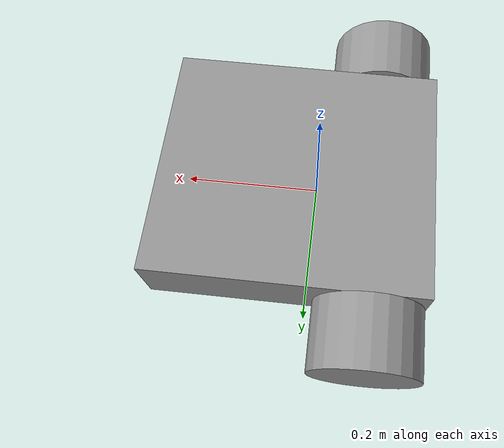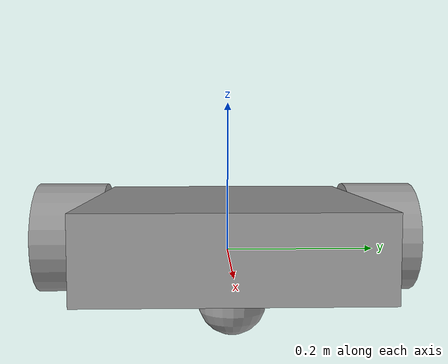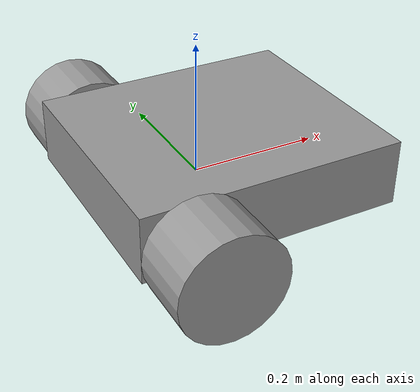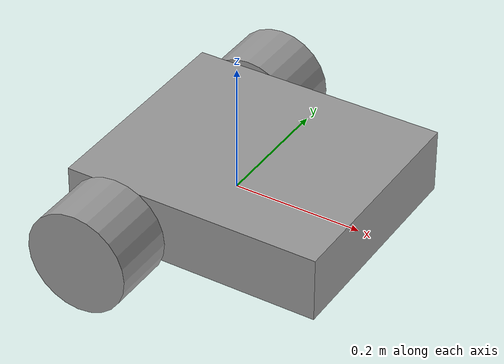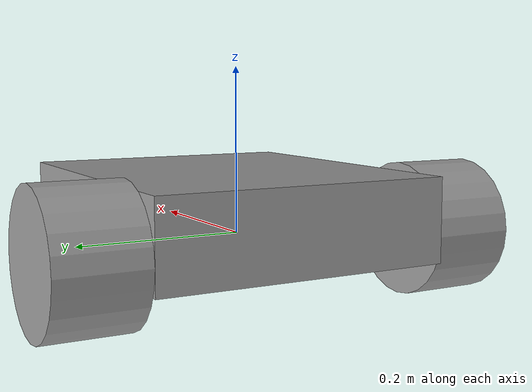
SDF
<?xml version='1.0'?>
<sdf version='1.6'>
  <model name='CasterWheelRobot'>
    <link name='link_2'>
      <pose frame=''>0.03 0 0.025 0 -0 0</pose>
      <inertial>
        <mass>0.0155432</mass>
        <inertia>
          <ixx>0.0001924</ixx>
          <ixy>0</ixy>
          <ixz>0</ixz>
          <iyy>0.0002189</iyy>
          <iyz>0</iyz>
          <izz>0.00038243</izz>
        </inertia>
        <pose frame=''>0 0 0 0 -0 0</pose>
      </inertial>
      <gravity>1</gravity>
      <self_collide>0</self_collide>
      <kinematic>0</kinematic>
      <visual name='visual'>
        <pose frame=''>0 0 0 0 -0 0</pose>
        <geometry>
          <box>
            <size>0.4 0.35 0.1</size>
          </box>
        </geometry>
        <material>
          <lighting>1</lighting>
          <script>
            <uri>file://media/materials/scripts/gazebo.material</uri>
            <name>Gazebo/Grey</name>
          </script>
          <shader type='pixel'>
            <normal_map>__default__</normal_map>
          </shader>
          <ambient>0.3 0.3 0.3 1</ambient>
          <diffuse>0.7 0.7 0.7 1</diffuse>
          <specular>0.01 0.01 0.01 1</specular>
          <emissive>0 0 0 1</emissive>
        </material>
        <transparency>0</transparency>
        <cast_shadows>1</cast_shadows>
      </visual>
      <collision name='collision'>
        <laser_retro>0</laser_retro>
        <max_contacts>10</max_contacts>
        <pose frame=''>0 0 0 0 -0 0</pose>
        <geometry>
          <box>
            <size>0.4 0.35 0.1</size>
          </box>
        </geometry>
        <surface>
          <friction>
            <ode>
              <mu>1</mu>
              <mu2>1</mu2>
              <fdir1>0 0 0</fdir1>
              <slip1>0</slip1>
              <slip2>0</slip2>
            </ode>
            <torsional>
              <coefficient>1</coefficient>
              <patch_radius>0</patch_radius>
              <surface_radius>0</surface_radius>
              <use_patch_radius>1</use_patch_radius>
              <ode>
                <slip>0</slip>
              </ode>
            </torsional>
          </friction>
          <bounce>
            <restitution_coefficient>0</restitution_coefficient>
            <threshold>1e+06</threshold>
          </bounce>
          <contact>
            <collide_without_contact>0</collide_without_contact>
            <collide_without_contact_bitmask>1</collide_without_contact_bitmask>
            <collide_bitmask>1</collide_bitmask>
            <ode>
              <soft_cfm>0</soft_cfm>
              <soft_erp>0.2</soft_erp>
              <kp>1e+13</kp>
              <kd>1</kd>
              <max_vel>0.01</max_vel>
              <min_depth>0</min_depth>
            </ode>
            <bullet>
              <split_impulse>1</split_impulse>
              <split_impulse_penetration_threshold>-0.01</split_impulse_penetration_threshold>
              <soft_cfm>0</soft_cfm>
              <soft_erp>0.2</soft_erp>
              <kp>1e+13</kp>
              <kd>1</kd>
            </bullet>
          </contact>
        </surface>
      </collision>
    </link>
    <link name='link_3'>
      <pose frame=''>-0.09 -0.225013 0.005 1.5707 -0 0</pose>
      <inertial>
        <mass>1</mass>
        <inertia>
          <ixx>0.145833</ixx>
          <ixy>0</ixy>
          <ixz>0</ixz>
          <iyy>0.145833</iyy>
          <iyz>0</iyz>
          <izz>0.125</izz>
        </inertia>
        <pose frame=''>0 0 0 0 -0 0</pose>
      </inertial>
      <gravity>1</gravity>
      <self_collide>0</self_collide>
      <kinematic>0</kinematic>
      <visual name='visual'>
        <pose frame=''>0 0 0 0 -0 0</pose>
        <geometry>
          <cylinder>
            <radius>0.08</radius>
            <length>0.1</length>
          </cylinder>
        </geometry>
        <material>
          <lighting>1</lighting>
          <script>
            <uri>file://media/materials/scripts/gazebo.material</uri>
            <name>Gazebo/Grey</name>
          </script>
          <shader type='pixel'>
            <normal_map>__default__</normal_map>
          </shader>
          <ambient>0.3 0.3 0.3 1</ambient>
          <diffuse>0.7 0.7 0.7 1</diffuse>
          <specular>0.01 0.01 0.01 1</specular>
          <emissive>0 0 0 1</emissive>
        </material>
        <transparency>0</transparency>
        <cast_shadows>1</cast_shadows>
      </visual>
      <collision name='collision'>
        <laser_retro>0</laser_retro>
        <max_contacts>10</max_contacts>
        <pose frame=''>0 0 0 0 -0 0</pose>
        <geometry>
          <cylinder>
            <radius>0.08</radius>
            <length>0.1</length>
          </cylinder>
        </geometry>
        <surface>
          <friction>
            <ode>
              <mu>1</mu>
              <mu2>1</mu2>
              <fdir1>0 0 0</fdir1>
              <slip1>0</slip1>
              <slip2>0</slip2>
            </ode>
            <torsional>
              <coefficient>1</coefficient>
              <patch_radius>0</patch_radius>
              <surface_radius>0</surface_radius>
              <use_patch_radius>1</use_patch_radius>
              <ode>
                <slip>0</slip>
              </ode>
            </torsional>
          </friction>
          <bounce>
            <restitution_coefficient>0</restitution_coefficient>
            <threshold>1e+06</threshold>
          </bounce>
          <contact>
            <collide_without_contact>0</collide_without_contact>
            <collide_without_contact_bitmask>1</collide_without_contact_bitmask>
            <collide_bitmask>1</collide_bitmask>
            <ode>
              <soft_cfm>0</soft_cfm>
              <soft_erp>0.2</soft_erp>
              <kp>1e+13</kp>
              <kd>1</kd>
              <max_vel>0.01</max_vel>
              <min_depth>0</min_depth>
            </ode>
            <bullet>
              <split_impulse>1</split_impulse>
              <split_impulse_penetration_threshold>-0.01</split_impulse_penetration_threshold>
              <soft_cfm>0</soft_cfm>
              <soft_erp>0.2</soft_erp>
              <kp>1e+13</kp>
              <kd>1</kd>
            </bullet>
          </contact>
        </surface>
      </collision>
    </link>
    <link name='link_3_clone'>
      <pose frame=''>-0.09 0.225008 0.005 -1.5707 0 0</pose>
      <inertial>
        <mass>1</mass>
        <inertia>
          <ixx>0.145833</ixx>
          <ixy>0</ixy>
          <ixz>0</ixz>
          <iyy>0.145833</iyy>
          <iyz>0</iyz>
          <izz>0.125</izz>
        </inertia>
        <pose frame=''>0 0 0 0 -0 0</pose>
      </inertial>
      <self_collide>0</self_collide>
      <kinematic>0</kinematic>
      <gravity>1</gravity>
      <visual name='visual'>
        <pose frame=''>0 0 0 0 -0 0</pose>
        <geometry>
          <cylinder>
            <radius>0.08</radius>
            <length>0.1</length>
          </cylinder>
        </geometry>
        <material>
          <lighting>1</lighting>
          <script>
            <uri>file://media/materials/scripts/gazebo.material</uri>
            <name>Gazebo/Grey</name>
          </script>
          <shader type='pixel'>
            <normal_map>__default__</normal_map>
          </shader>
          <ambient>0.3 0.3 0.3 1</ambient>
          <diffuse>0.7 0.7 0.7 1</diffuse>
          <specular>0.01 0.01 0.01 1</specular>
          <emissive>0 0 0 1</emissive>
        </material>
        <transparency>0</transparency>
        <cast_shadows>1</cast_shadows>
      </visual>
      <collision name='collision'>
        <laser_retro>0</laser_retro>
        <max_contacts>10</max_contacts>
        <pose frame=''>0 0 0 0 -0 0</pose>
        <geometry>
          <cylinder>
            <radius>0.08</radius>
            <length>0.1</length>
          </cylinder>
        </geometry>
        <surface>
          <friction>
            <ode>
              <mu>1</mu>
              <mu2>1</mu2>
              <fdir1>0 0 0</fdir1>
              <slip1>0</slip1>
              <slip2>0</slip2>
            </ode>
            <torsional>
              <coefficient>1</coefficient>
              <patch_radius>0</patch_radius>
              <surface_radius>0</surface_radius>
              <use_patch_radius>1</use_patch_radius>
              <ode>
                <slip>0</slip>
              </ode>
            </torsional>
          </friction>
          <bounce>
            <restitution_coefficient>0</restitution_coefficient>
            <threshold>1e+06</threshold>
          </bounce>
          <contact>
            <collide_without_contact>0</collide_without_contact>
            <collide_without_contact_bitmask>1</collide_without_contact_bitmask>
            <collide_bitmask>1</collide_bitmask>
            <ode>
              <soft_cfm>0</soft_cfm>
              <soft_erp>0.2</soft_erp>
              <kp>1e+13</kp>
              <kd>1</kd>
              <max_vel>0.01</max_vel>
              <min_depth>0</min_depth>
            </ode>
            <bullet>
              <split_impulse>1</split_impulse>
              <split_impulse_penetration_threshold>-0.01</split_impulse_penetration_threshold>
              <soft_cfm>0</soft_cfm>
              <soft_erp>0.2</soft_erp>
              <kp>1e+13</kp>
              <kd>1</kd>
            </bullet>
          </contact>
        </surface>
      </collision>
    </link>
    <link name='link_4'>
      <pose frame=''>0.15 0 -0.035 0 -0 0</pose>
      <inertial>
        <mass>0.00336129</mass>
        <inertia>
          <ixx>7.54e-06</ixx>
          <ixy>0</ixy>
          <ixz>0</ixz>
          <iyy>7.54e-06</iyy>
          <iyz>0</iyz>
          <izz>7.54e-06</izz>
        </inertia>
        <pose frame=''>0 0 0 0 -0 0</pose>
      </inertial>
      <gravity>1</gravity>
      <self_collide>0</self_collide>
      <kinematic>0</kinematic>
      <visual name='visual'>
        <pose frame=''>0 0 0 0 -0 0</pose>
        <geometry>
          <sphere>
            <radius>0.04</radius>
          </sphere>
        </geometry>
        <material>
          <lighting>1</lighting>
          <script>
            <uri>file://media/materials/scripts/gazebo.material</uri>
            <name>Gazebo/Grey</name>
          </script>
          <shader type='pixel'>
            <normal_map>__default__</normal_map>
          </shader>
          <ambient>0.3 0.3 0.3 1</ambient>
          <diffuse>0.7 0.7 0.7 1</diffuse>
          <specular>0.01 0.01 0.01 1</specular>
          <emissive>0 0 0 1</emissive>
        </material>
        <transparency>0</transparency>
        <cast_shadows>1</cast_shadows>
      </visual>
      <collision name='collision'>
        <laser_retro>0</laser_retro>
        <max_contacts>10</max_contacts>
        <pose frame=''>0 0 0 0 -0 0</pose>
        <geometry>
          <sphere>
            <radius>0.04</radius>
          </sphere>
        </geometry>
        <surface>
          <friction>
            <ode>
              <mu>1</mu>
              <mu2>1</mu2>
              <fdir1>0 0 0</fdir1>
              <slip1>0</slip1>
              <slip2>0</slip2>
            </ode>
            <torsional>
              <coefficient>1</coefficient>
              <patch_radius>0</patch_radius>
              <surface_radius>0</surface_radius>
              <use_patch_radius>1</use_patch_radius>
              <ode>
                <slip>0</slip>
              </ode>
            </torsional>
          </friction>
          <bounce>
            <restitution_coefficient>0</restitution_coefficient>
            <threshold>1e+06</threshold>
          </bounce>
          <contact>
            <collide_without_contact>0</collide_without_contact>
            <collide_without_contact_bitmask>1</collide_without_contact_bitmask>
            <collide_bitmask>1</collide_bitmask>
            <ode>
              <soft_cfm>0</soft_cfm>
              <soft_erp>0.2</soft_erp>
              <kp>1e+13</kp>
              <kd>1</kd>
              <max_vel>0.01</max_vel>
              <min_depth>0</min_depth>
            </ode>
            <bullet>
              <split_impulse>1</split_impulse>
              <split_impulse_penetration_threshold>-0.01</split_impulse_penetration_threshold>
              <soft_cfm>0</soft_cfm>
              <soft_erp>0.2</soft_erp>
              <kp>1e+13</kp>
              <kd>1</kd>
            </bullet>
          </contact>
        </surface>
      </collision>
    </link>
    <joint name='link_2_JOINT_10' type='ball'>
      <parent>link_2</parent>
      <child>link_4</child>
      <pose frame=''>0 0 0 0 -0 0</pose>
      <physics>
        <ode>
          <limit>
            <cfm>0</cfm>
            <erp>0.2</erp>
          </limit>
          <suspension>
            <cfm>0</cfm>
            <erp>0.2</erp>
          </suspension>
        </ode>
      </physics>
    </joint>
    <joint name='link_2_JOINT_8' type='revolute'>
      <parent>link_2</parent>
      <child>link_3</child>
      <pose frame=''>0 0 0 0 -0 0</pose>
      <axis>
        <xyz>0 0 1</xyz>
        <use_parent_model_frame>0</use_parent_model_frame>
        <limit>
          <lower>-1.79769e+308</lower>
          <upper>1.79769e+308</upper>
          <effort>-1</effort>
          <velocity>-1</velocity>
        </limit>
        <dynamics>
          <spring_reference>0</spring_reference>
          <spring_stiffness>0</spring_stiffness>
          <damping>0</damping>
        </dynamics>
      </axis>
      <physics>
        <ode>
          <limit>
            <cfm>0</cfm>
            <erp>0.2</erp>
          </limit>
          <suspension>
            <cfm>0</cfm>
            <erp>0.2</erp>
          </suspension>
        </ode>
      </physics>
    </joint>
    <joint name='link_2_JOINT_9' type='revolute'>
      <parent>link_2</parent>
      <child>link_3_clone</child>
      <pose frame=''>0 0 0 0 -0 0</pose>
      <axis>
        <xyz>0 0 1</xyz>
        <use_parent_model_frame>0</use_parent_model_frame>
        <limit>
          <lower>-1.79769e+308</lower>
          <upper>1.79769e+308</upper>
          <effort>-1</effort>
          <velocity>-1</velocity>
        </limit>
        <dynamics>
          <spring_reference>0</spring_reference>
          <spring_stiffness>0</spring_stiffness>
          <damping>0</damping>
        </dynamics>
      </axis>
      <physics>
        <ode>
          <limit>
            <cfm>0</cfm>
            <erp>0.2</erp>
          </limit>
          <suspension>
            <cfm>0</cfm>
            <erp>0.2</erp>
          </suspension>
        </ode>
      </physics>
    </joint>
    <static>0</static>
    <allow_auto_disable>1</allow_auto_disable>
  </model>
</sdf>
